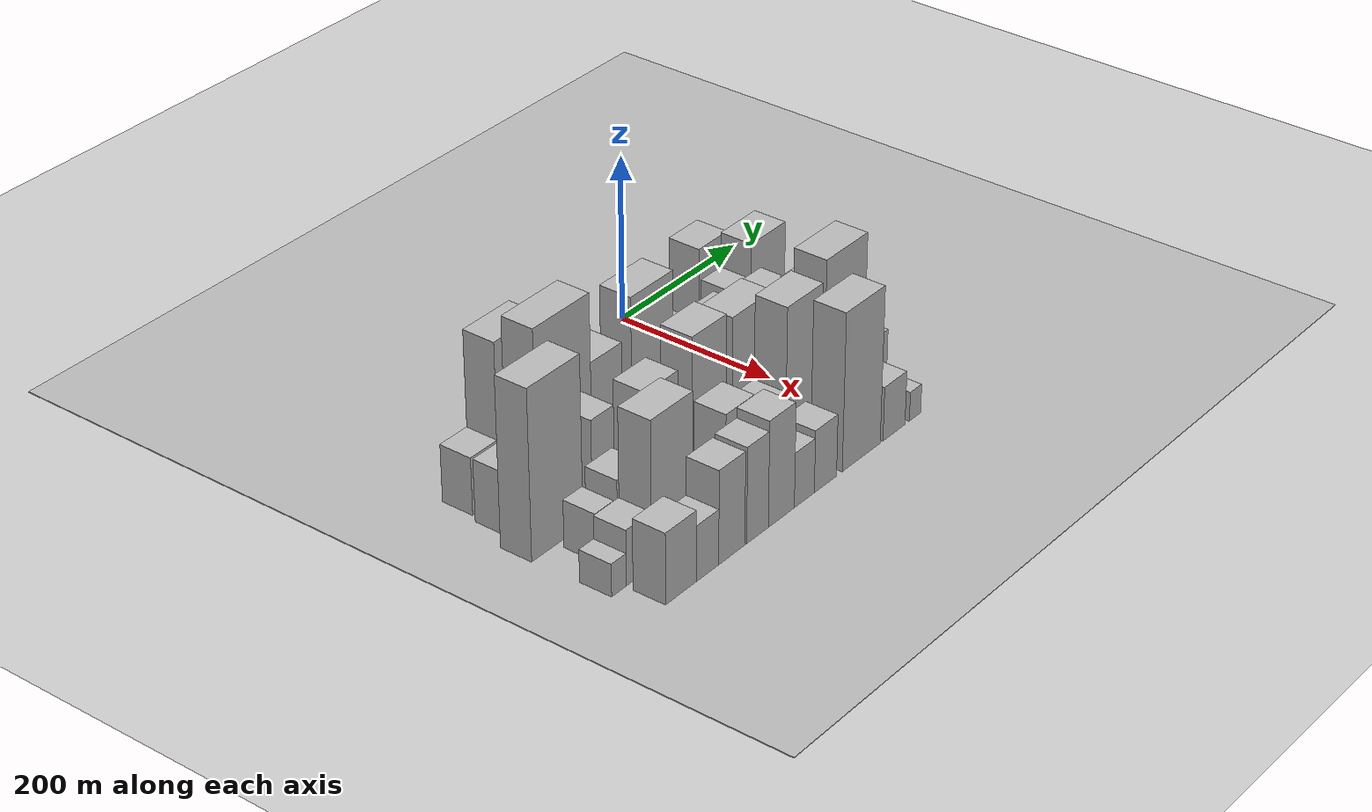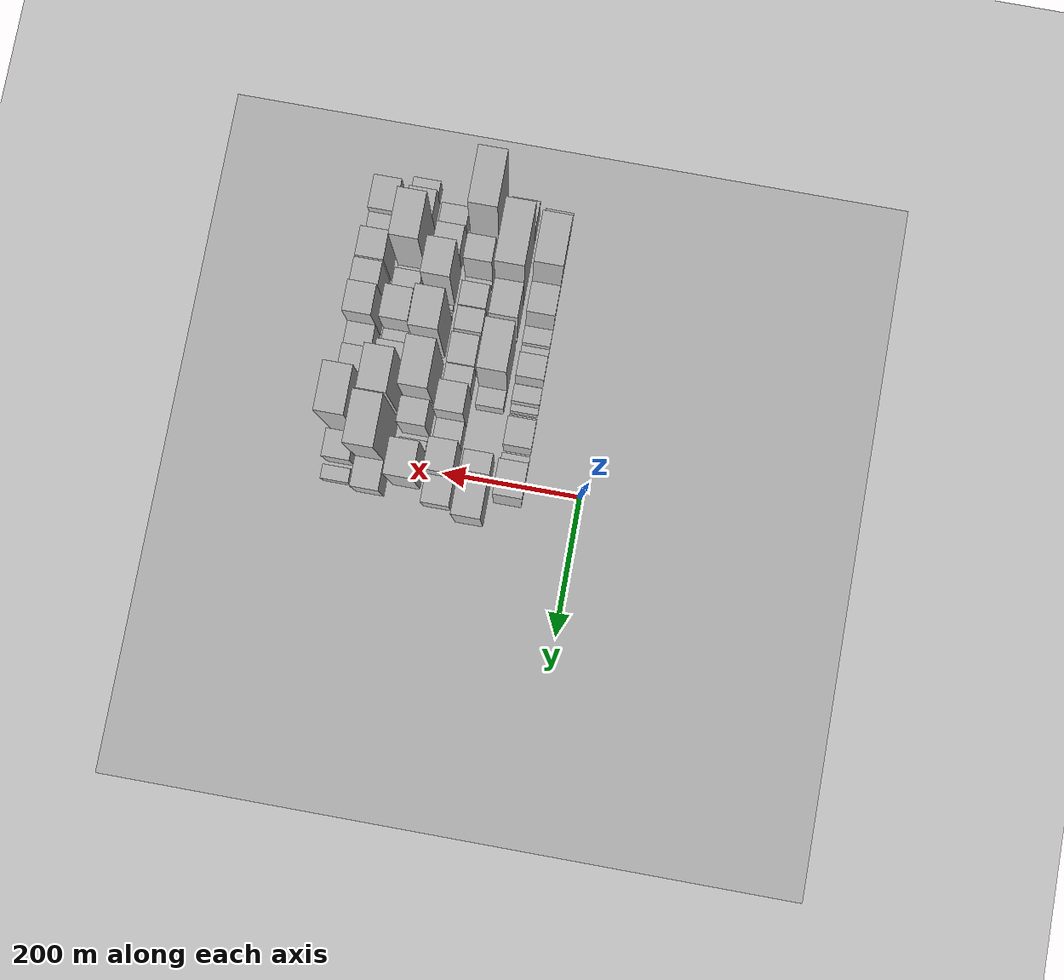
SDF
<sdf version="1.6">
 <world name="default">
  <include><name>ground_plane_1</name><uri>model://HANNAS_ground_plane</uri></include>
  <include>
   <name>ground_plane_2</name>
   <uri>model://HANNAS_ground_plane</uri>
   <pose>100 0 0  0 0 0</pose>
  </include>
  <model name="building_11">
   <static>1</static>
   <pose>100.0000 -367.1721 0 0.000000 0.000000 0.000000</pose>
   <link name="link">
    <pose>0 0 34.50 0 0 0</pose>
    <collision name="collision"><geometry><box><size>40.0000 40.4791 69.0000</size></box></geometry></collision>
    <visual name="visual">
     <cast_shadows>0</cast_shadows>
     <geometry><box><size>40.0000 40.4791 69.0000</size></box></geometry>
     <material>
      <script>
       <uri>model://HANNAS_wall/materials/scripts</uri>
       <uri>model://HANNAS_wall/materials/textures</uri>
       <name>vrc/HANNAS_wall</name>
      </script>
     </material>
    </visual>
   </link>
  </model>
  <model name="building_12">
   <static>1</static>
   <pose>100.0000 -311.9946 0 0.000000 0.000000 0.000000</pose>
   <link name="link">
    <pose>0 0 91.50 0 0 0</pose>
    <collision name="collision"><geometry><box><size>40.0000 69.8759 183.0000</size></box></geometry></collision>
    <visual name="visual">
     <cast_shadows>0</cast_shadows>
     <geometry><box><size>40.0000 69.8759 183.0000</size></box></geometry>
     <material>
      <script>
       <uri>model://HANNAS_wall/materials/scripts</uri>
       <uri>model://HANNAS_wall/materials/textures</uri>
       <name>vrc/HANNAS_wall</name>
      </script>
     </material>
    </visual>
   </link>
  </model>
  <model name="building_13">
   <static>1</static>
   <pose>100.0000 -249.6901 0 0.000000 0.000000 0.000000</pose>
   <link name="link">
    <pose>0 0 54.00 0 0 0</pose>
    <collision name="collision"><geometry><box><size>40.0000 42.7331 108.0000</size></box></geometry></collision>
    <visual name="visual">
     <cast_shadows>0</cast_shadows>
     <geometry><box><size>40.0000 42.7331 108.0000</size></box></geometry>
     <material>
      <script>
       <uri>model://HANNAS_wall/materials/scripts</uri>
       <uri>model://HANNAS_wall/materials/textures</uri>
       <name>vrc/HANNAS_wall</name>
      </script>
     </material>
    </visual>
   </link>
  </model>
  <model name="building_14">
   <static>1</static>
   <pose>100.0000 -210.0288 0 0.000000 0.000000 0.000000</pose>
   <link name="link">
    <pose>0 0 24.00 0 0 0</pose>
    <collision name="collision"><geometry><box><size>40.0000 24.5895 48.0000</size></box></geometry></collision>
    <visual name="visual">
     <cast_shadows>0</cast_shadows>
     <geometry><box><size>40.0000 24.5895 48.0000</size></box></geometry>
     <material>
      <script>
       <uri>model://HANNAS_wall/materials/scripts</uri>
       <uri>model://HANNAS_wall/materials/textures</uri>
       <name>vrc/HANNAS_wall</name>
      </script>
     </material>
    </visual>
   </link>
  </model>
  <model name="building_15">
   <static>1</static>
   <pose>100.0000 -189.3858 0 0.000000 0.000000 0.000000</pose>
   <link name="link">
    <pose>0 0 15.00 0 0 0</pose>
    <collision name="collision"><geometry><box><size>40.0000 16.6964 30.0000</size></box></geometry></collision>
    <visual name="visual">
     <cast_shadows>0</cast_shadows>
     <geometry><box><size>40.0000 16.6964 30.0000</size></box></geometry>
     <material>
      <script>
       <uri>model://HANNAS_wall/materials/scripts</uri>
       <uri>model://HANNAS_wall/materials/textures</uri>
       <name>vrc/HANNAS_wall</name>
      </script>
     </material>
    </visual>
   </link>
  </model>
  <model name="building_16">
   <static>1</static>
   <pose>100.0000 -163.9849 0 0.000000 0.000000 0.000000</pose>
   <link name="link">
    <pose>0 0 31.50 0 0 0</pose>
    <collision name="collision"><geometry><box><size>40.0000 34.1054 63.0000</size></box></geometry></collision>
    <visual name="visual">
     <cast_shadows>0</cast_shadows>
     <geometry><box><size>40.0000 34.1054 63.0000</size></box></geometry>
     <material>
      <script>
       <uri>model://HANNAS_wall/materials/scripts</uri>
       <uri>model://HANNAS_wall/materials/textures</uri>
       <name>vrc/HANNAS_wall</name>
      </script>
     </material>
    </visual>
   </link>
  </model>
  <model name="building_17">
   <static>1</static>
   <pose>100.0000 -125.6724 0 0.000000 0.000000 0.000000</pose>
   <link name="link">
    <pose>0 0 24.00 0 0 0</pose>
    <collision name="collision"><geometry><box><size>40.0000 24.5197 48.0000</size></box></geometry></collision>
    <visual name="visual">
     <cast_shadows>0</cast_shadows>
     <geometry><box><size>40.0000 24.5197 48.0000</size></box></geometry>
     <material>
      <script>
       <uri>model://HANNAS_wall/materials/scripts</uri>
       <uri>model://HANNAS_wall/materials/textures</uri>
       <name>vrc/HANNAS_wall</name>
      </script>
     </material>
    </visual>
   </link>
  </model>
  <model name="building_18">
   <static>1</static>
   <pose>100.0000 -108.2960 0 0.000000 0.000000 0.000000</pose>
   <link name="link">
    <pose>0 0 10.50 0 0 0</pose>
    <collision name="collision"><geometry><box><size>40.0000 10.2332 21.0000</size></box></geometry></collision>
    <visual name="visual">
     <cast_shadows>0</cast_shadows>
     <geometry><box><size>40.0000 10.2332 21.0000</size></box></geometry>
     <material>
      <script>
       <uri>model://HANNAS_wall/materials/scripts</uri>
       <uri>model://HANNAS_wall/materials/textures</uri>
       <name>vrc/HANNAS_wall</name>
      </script>
     </material>
    </visual>
   </link>
  </model>
  <model name="building_19">
   <static>1</static>
   <pose>100.0000 -93.1652 0 0.000000 0.000000 0.000000</pose>
   <link name="link">
    <pose>0 0 10.50 0 0 0</pose>
    <collision name="collision"><geometry><box><size>40.0000 10.0284 21.0000</size></box></geometry></collision>
    <visual name="visual">
     <cast_shadows>0</cast_shadows>
     <geometry><box><size>40.0000 10.0284 21.0000</size></box></geometry>
     <material>
      <script>
       <uri>model://HANNAS_wall/materials/scripts</uri>
       <uri>model://HANNAS_wall/materials/textures</uri>
       <name>vrc/HANNAS_wall</name>
      </script>
     </material>
    </visual>
   </link>
  </model>
  <model name="building_20">
   <static>1</static>
   <pose>100.0000 -67.8375 0 0.000000 0.000000 0.000000</pose>
   <link name="link">
    <pose>0 0 36.00 0 0 0</pose>
    <collision name="collision"><geometry><box><size>40.0000 40.6270 72.0000</size></box></geometry></collision>
    <visual name="visual">
     <cast_shadows>0</cast_shadows>
     <geometry><box><size>40.0000 40.6270 72.0000</size></box></geometry>
     <material>
      <script>
       <uri>model://HANNAS_wall/materials/scripts</uri>
       <uri>model://HANNAS_wall/materials/textures</uri>
       <name>vrc/HANNAS_wall</name>
      </script>
     </material>
    </visual>
   </link>
  </model>
  <model name="building_21">
   <static>1</static>
   <pose>100.0000 -30.2144 0 0.000000 0.000000 0.000000</pose>
   <link name="link">
    <pose>0 0 19.50 0 0 0</pose>
    <collision name="collision"><geometry><box><size>40.0000 20.6191 39.0000</size></box></geometry></collision>
    <visual name="visual">
     <cast_shadows>0</cast_shadows>
     <geometry><box><size>40.0000 20.6191 39.0000</size></box></geometry>
     <material>
      <script>
       <uri>model://HANNAS_wall/materials/scripts</uri>
       <uri>model://HANNAS_wall/materials/textures</uri>
       <name>vrc/HANNAS_wall</name>
      </script>
     </material>
    </visual>
   </link>
  </model>
  <model name="building_22">
   <static>1</static>
   <pose>100.0000 4.3915 0 0.000000 0.000000 0.000000</pose>
   <link name="link">
    <pose>0 0 69.00 0 0 0</pose>
    <collision name="collision"><geometry><box><size>40.0000 48.5927 138.0000</size></box></geometry></collision>
    <visual name="visual">
     <cast_shadows>0</cast_shadows>
     <geometry><box><size>40.0000 48.5927 138.0000</size></box></geometry>
     <material>
      <script>
       <uri>model://HANNAS_wall/materials/scripts</uri>
       <uri>model://HANNAS_wall/materials/textures</uri>
       <name>vrc/HANNAS_wall</name>
      </script>
     </material>
    </visual>
   </link>
  </model>
  <model name="building_55">
   <static>1</static>
   <pose>149.0000 -373.6690 0 0.000000 0.000000 0.000000</pose>
   <link name="link">
    <pose>0 0 37.50 0 0 0</pose>
    <collision name="collision"><geometry><box><size>40.0000 40.7140 75.0000</size></box></geometry></collision>
    <visual name="visual">
     <cast_shadows>0</cast_shadows>
     <geometry><box><size>40.0000 40.7140 75.0000</size></box></geometry>
     <material>
      <script>
       <uri>model://HANNAS_wall/materials/scripts</uri>
       <uri>model://HANNAS_wall/materials/textures</uri>
       <name>vrc/HANNAS_wall</name>
      </script>
     </material>
    </visual>
   </link>
  </model>
  <model name="building_56">
   <static>1</static>
   <pose>149.0000 -302.2991 0 0.000000 0.000000 0.000000</pose>
   <link name="link">
    <pose>0 0 108.00 0 0 0</pose>
    <collision name="collision"><geometry><box><size>40.0000 86.0258 216.0000</size></box></geometry></collision>
    <visual name="visual">
     <cast_shadows>0</cast_shadows>
     <geometry><box><size>40.0000 86.0258 216.0000</size></box></geometry>
     <material>
      <script>
       <uri>model://HANNAS_wall/materials/scripts</uri>
       <uri>model://HANNAS_wall/materials/textures</uri>
       <name>vrc/HANNAS_wall</name>
      </script>
     </material>
    </visual>
   </link>
  </model>
  <model name="building_57">
   <static>1</static>
   <pose>149.0000 -234.6798 0 0.000000 0.000000 0.000000</pose>
   <link name="link">
    <pose>0 0 67.50 0 0 0</pose>
    <collision name="collision"><geometry><box><size>40.0000 49.2129 135.0000</size></box></geometry></collision>
    <visual name="visual">
     <cast_shadows>0</cast_shadows>
     <geometry><box><size>40.0000 49.2129 135.0000</size></box></geometry>
     <material>
      <script>
       <uri>model://HANNAS_wall/materials/scripts</uri>
       <uri>model://HANNAS_wall/materials/textures</uri>
       <name>vrc/HANNAS_wall</name>
      </script>
     </material>
    </visual>
   </link>
  </model>
  <model name="building_58">
   <static>1</static>
   <pose>149.0000 -206.4433 0 0.000000 0.000000 0.000000</pose>
   <link name="link">
    <pose>0 0 7.50 0 0 0</pose>
    <collision name="collision"><geometry><box><size>40.0000 7.2601 15.0000</size></box></geometry></collision>
    <visual name="visual">
     <cast_shadows>0</cast_shadows>
     <geometry><box><size>40.0000 7.2601 15.0000</size></box></geometry>
     <material>
      <script>
       <uri>model://HANNAS_wall/materials/scripts</uri>
       <uri>model://HANNAS_wall/materials/textures</uri>
       <name>vrc/HANNAS_wall</name>
      </script>
     </material>
    </visual>
   </link>
  </model>
  <model name="building_59">
   <static>1</static>
   <pose>149.0000 -160.5420 0 0.000000 0.000000 0.000000</pose>
   <link name="link">
    <pose>0 0 90.00 0 0 0</pose>
    <collision name="collision"><geometry><box><size>40.0000 68.5425 180.0000</size></box></geometry></collision>
    <visual name="visual">
     <cast_shadows>0</cast_shadows>
     <geometry><box><size>40.0000 68.5425 180.0000</size></box></geometry>
     <material>
      <script>
       <uri>model://HANNAS_wall/materials/scripts</uri>
       <uri>model://HANNAS_wall/materials/textures</uri>
       <name>vrc/HANNAS_wall</name>
      </script>
     </material>
    </visual>
   </link>
  </model>
  <model name="building_60">
   <static>1</static>
   <pose>149.0000 -112.8269 0 0.000000 0.000000 0.000000</pose>
   <link name="link">
    <pose>0 0 22.50 0 0 0</pose>
    <collision name="collision"><geometry><box><size>40.0000 26.8878 45.0000</size></box></geometry></collision>
    <visual name="visual">
     <cast_shadows>0</cast_shadows>
     <geometry><box><size>40.0000 26.8878 45.0000</size></box></geometry>
     <material>
      <script>
       <uri>model://HANNAS_wall/materials/scripts</uri>
       <uri>model://HANNAS_wall/materials/textures</uri>
       <name>vrc/HANNAS_wall</name>
      </script>
     </material>
    </visual>
   </link>
  </model>
  <model name="building_61">
   <static>1</static>
   <pose>149.0000 -10.8779 0 0.000000 0.000000 0.000000</pose>
   <link name="link">
    <pose>0 0 54.00 0 0 0</pose>
    <collision name="collision"><geometry><box><size>40.0000 33.6701 108.0000</size></box></geometry></collision>
    <visual name="visual">
     <cast_shadows>0</cast_shadows>
     <geometry><box><size>40.0000 33.6701 108.0000</size></box></geometry>
     <material>
      <script>
       <uri>model://HANNAS_wall/materials/scripts</uri>
       <uri>model://HANNAS_wall/materials/textures</uri>
       <name>vrc/HANNAS_wall</name>
      </script>
     </material>
    </visual>
   </link>
  </model>
  <model name="building_62">
   <static>1</static>
   <pose>149.0000 35.7177 0 0.000000 0.000000 0.000000</pose>
   <link name="link">
    <pose>0 0 75.00 0 0 0</pose>
    <collision name="collision"><geometry><box><size>40.0000 59.5212 150.0000</size></box></geometry></collision>
    <visual name="visual">
     <cast_shadows>0</cast_shadows>
     <geometry><box><size>40.0000 59.5212 150.0000</size></box></geometry>
     <material>
      <script>
       <uri>model://HANNAS_wall/materials/scripts</uri>
       <uri>model://HANNAS_wall/materials/textures</uri>
       <name>vrc/HANNAS_wall</name>
      </script>
     </material>
    </visual>
   </link>
  </model>
  <model name="building_92">
   <static>1</static>
   <pose>198.0000 -373.3822 0 0.000000 0.000000 0.000000</pose>
   <link name="link">
    <pose>0 0 100.50 0 0 0</pose>
    <collision name="collision"><geometry><box><size>40.0000 78.7951 201.0000</size></box></geometry></collision>
    <visual name="visual">
     <cast_shadows>0</cast_shadows>
     <geometry><box><size>40.0000 78.7951 201.0000</size></box></geometry>
     <material>
      <script>
       <uri>model://HANNAS_wall/materials/scripts</uri>
       <uri>model://HANNAS_wall/materials/textures</uri>
       <name>vrc/HANNAS_wall</name>
      </script>
     </material>
    </visual>
   </link>
  </model>
  <model name="building_93">
   <static>1</static>
   <pose>198.0000 -324.5776 0 0.000000 0.000000 0.000000</pose>
   <link name="link">
    <pose>0 0 13.50 0 0 0</pose>
    <collision name="collision"><geometry><box><size>40.0000 10.8140 27.0000</size></box></geometry></collision>
    <visual name="visual">
     <cast_shadows>0</cast_shadows>
     <geometry><box><size>40.0000 10.8140 27.0000</size></box></geometry>
     <material>
      <script>
       <uri>model://HANNAS_wall/materials/scripts</uri>
       <uri>model://HANNAS_wall/materials/textures</uri>
       <name>vrc/HANNAS_wall</name>
      </script>
     </material>
    </visual>
   </link>
  </model>
  <model name="building_94">
   <static>1</static>
   <pose>198.0000 -301.4640 0 0.000000 0.000000 0.000000</pose>
   <link name="link">
    <pose>0 0 58.50 0 0 0</pose>
    <collision name="collision"><geometry><box><size>40.0000 35.4132 117.0000</size></box></geometry></collision>
    <visual name="visual">
     <cast_shadows>0</cast_shadows>
     <geometry><box><size>40.0000 35.4132 117.0000</size></box></geometry>
     <material>
      <script>
       <uri>model://HANNAS_wall/materials/scripts</uri>
       <uri>model://HANNAS_wall/materials/textures</uri>
       <name>vrc/HANNAS_wall</name>
      </script>
     </material>
    </visual>
   </link>
  </model>
  <model name="building_95">
   <static>1</static>
   <pose>198.0000 -278.8083 0 0.000000 0.000000 0.000000</pose>
   <link name="link">
    <pose>0 0 10.50 0 0 0</pose>
    <collision name="collision"><geometry><box><size>40.0000 9.8983 21.0000</size></box></geometry></collision>
    <visual name="visual">
     <cast_shadows>0</cast_shadows>
     <geometry><box><size>40.0000 9.8983 21.0000</size></box></geometry>
     <material>
      <script>
       <uri>model://HANNAS_wall/materials/scripts</uri>
       <uri>model://HANNAS_wall/materials/textures</uri>
       <name>vrc/HANNAS_wall</name>
      </script>
     </material>
    </visual>
   </link>
  </model>
  <model name="building_96">
   <static>1</static>
   <pose>198.0000 -249.4217 0 0.000000 0.000000 0.000000</pose>
   <link name="link">
    <pose>0 0 31.50 0 0 0</pose>
    <collision name="collision"><geometry><box><size>40.0000 34.8749 63.0000</size></box></geometry></collision>
    <visual name="visual">
     <cast_shadows>0</cast_shadows>
     <geometry><box><size>40.0000 34.8749 63.0000</size></box></geometry>
     <material>
      <script>
       <uri>model://HANNAS_wall/materials/scripts</uri>
       <uri>model://HANNAS_wall/materials/textures</uri>
       <name>vrc/HANNAS_wall</name>
      </script>
     </material>
    </visual>
   </link>
  </model>
  <model name="building_97">
   <static>1</static>
   <pose>198.0000 -215.1450 0 0.000000 0.000000 0.000000</pose>
   <link name="link">
    <pose>0 0 28.50 0 0 0</pose>
    <collision name="collision"><geometry><box><size>40.0000 33.6785 57.0000</size></box></geometry></collision>
    <visual name="visual">
     <cast_shadows>0</cast_shadows>
     <geometry><box><size>40.0000 33.6785 57.0000</size></box></geometry>
     <material>
      <script>
       <uri>model://HANNAS_wall/materials/scripts</uri>
       <uri>model://HANNAS_wall/materials/textures</uri>
       <name>vrc/HANNAS_wall</name>
      </script>
     </material>
    </visual>
   </link>
  </model>
  <model name="building_98">
   <static>1</static>
   <pose>198.0000 -168.3652 0 0.000000 0.000000 0.000000</pose>
   <link name="link">
    <pose>0 0 37.50 0 0 0</pose>
    <collision name="collision"><geometry><box><size>40.0000 43.8811 75.0000</size></box></geometry></collision>
    <visual name="visual">
     <cast_shadows>0</cast_shadows>
     <geometry><box><size>40.0000 43.8811 75.0000</size></box></geometry>
     <material>
      <script>
       <uri>model://HANNAS_wall/materials/scripts</uri>
       <uri>model://HANNAS_wall/materials/textures</uri>
       <name>vrc/HANNAS_wall</name>
      </script>
     </material>
    </visual>
   </link>
  </model>
  <model name="building_99">
   <static>1</static>
   <pose>198.0000 -128.9223 0 0.000000 0.000000 0.000000</pose>
   <link name="link">
    <pose>0 0 34.50 0 0 0</pose>
    <collision name="collision"><geometry><box><size>40.0000 35.0048 69.0000</size></box></geometry></collision>
    <visual name="visual">
     <cast_shadows>0</cast_shadows>
     <geometry><box><size>40.0000 35.0048 69.0000</size></box></geometry>
     <material>
      <script>
       <uri>model://HANNAS_wall/materials/scripts</uri>
       <uri>model://HANNAS_wall/materials/textures</uri>
       <name>vrc/HANNAS_wall</name>
      </script>
     </material>
    </visual>
   </link>
  </model>
  <model name="building_100">
   <static>1</static>
   <pose>198.0000 -90.5883 0 0.000000 0.000000 0.000000</pose>
   <link name="link">
    <pose>0 0 66.00 0 0 0</pose>
    <collision name="collision"><geometry><box><size>40.0000 41.6631 132.0000</size></box></geometry></collision>
    <visual name="visual">
     <cast_shadows>0</cast_shadows>
     <geometry><box><size>40.0000 41.6631 132.0000</size></box></geometry>
     <material>
      <script>
       <uri>model://HANNAS_wall/materials/scripts</uri>
       <uri>model://HANNAS_wall/materials/textures</uri>
       <name>vrc/HANNAS_wall</name>
      </script>
     </material>
    </visual>
   </link>
  </model>
  <model name="building_101">
   <static>1</static>
   <pose>198.0000 -52.0225 0 0.000000 0.000000 0.000000</pose>
   <link name="link">
    <pose>0 0 30.00 0 0 0</pose>
    <collision name="collision"><geometry><box><size>40.0000 35.4684 60.0000</size></box></geometry></collision>
    <visual name="visual">
     <cast_shadows>0</cast_shadows>
     <geometry><box><size>40.0000 35.4684 60.0000</size></box></geometry>
     <material>
      <script>
       <uri>model://HANNAS_wall/materials/scripts</uri>
       <uri>model://HANNAS_wall/materials/textures</uri>
       <name>vrc/HANNAS_wall</name>
      </script>
     </material>
    </visual>
   </link>
  </model>
  <model name="building_102">
   <static>1</static>
   <pose>198.0000 -11.7291 0 0.000000 0.000000 0.000000</pose>
   <link name="link">
    <pose>0 0 61.50 0 0 0</pose>
    <collision name="collision"><geometry><box><size>40.0000 45.1184 123.0000</size></box></geometry></collision>
    <visual name="visual">
     <cast_shadows>0</cast_shadows>
     <geometry><box><size>40.0000 45.1184 123.0000</size></box></geometry>
     <material>
      <script>
       <uri>model://HANNAS_wall/materials/scripts</uri>
       <uri>model://HANNAS_wall/materials/textures</uri>
       <name>vrc/HANNAS_wall</name>
      </script>
     </material>
    </visual>
   </link>
  </model>
  <model name="building_103">
   <static>1</static>
   <pose>198.0000 30.8968 0 0.000000 0.000000 0.000000</pose>
   <link name="link">
    <pose>0 0 34.50 0 0 0</pose>
    <collision name="collision"><geometry><box><size>40.0000 40.1334 69.0000</size></box></geometry></collision>
    <visual name="visual">
     <cast_shadows>0</cast_shadows>
     <geometry><box><size>40.0000 40.1334 69.0000</size></box></geometry>
     <material>
      <script>
       <uri>model://HANNAS_wall/materials/scripts</uri>
       <uri>model://HANNAS_wall/materials/textures</uri>
       <name>vrc/HANNAS_wall</name>
      </script>
     </material>
    </visual>
   </link>
  </model>
  <model name="building_136">
   <static>1</static>
   <pose>247.0000 -359.7017 0 0.000000 0.000000 0.000000</pose>
   <link name="link">
    <pose>0 0 28.50 0 0 0</pose>
    <collision name="collision"><geometry><box><size>40.0000 29.2827 57.0000</size></box></geometry></collision>
    <visual name="visual">
     <cast_shadows>0</cast_shadows>
     <geometry><box><size>40.0000 29.2827 57.0000</size></box></geometry>
     <material>
      <script>
       <uri>model://HANNAS_wall/materials/scripts</uri>
       <uri>model://HANNAS_wall/materials/textures</uri>
       <name>vrc/HANNAS_wall</name>
      </script>
     </material>
    </visual>
   </link>
  </model>
  <model name="building_137">
   <static>1</static>
   <pose>247.0000 -318.9905 0 0.000000 0.000000 0.000000</pose>
   <link name="link">
    <pose>0 0 39.00 0 0 0</pose>
    <collision name="collision"><geometry><box><size>40.0000 42.1396 78.0000</size></box></geometry></collision>
    <visual name="visual">
     <cast_shadows>0</cast_shadows>
     <geometry><box><size>40.0000 42.1396 78.0000</size></box></geometry>
     <material>
      <script>
       <uri>model://HANNAS_wall/materials/scripts</uri>
       <uri>model://HANNAS_wall/materials/textures</uri>
       <name>vrc/HANNAS_wall</name>
      </script>
     </material>
    </visual>
   </link>
  </model>
  <model name="building_138">
   <static>1</static>
   <pose>247.0000 -269.2816 0 0.000000 0.000000 0.000000</pose>
   <link name="link">
    <pose>0 0 78.00 0 0 0</pose>
    <collision name="collision"><geometry><box><size>40.0000 51.2782 156.0000</size></box></geometry></collision>
    <visual name="visual">
     <cast_shadows>0</cast_shadows>
     <geometry><box><size>40.0000 51.2782 156.0000</size></box></geometry>
     <material>
      <script>
       <uri>model://HANNAS_wall/materials/scripts</uri>
       <uri>model://HANNAS_wall/materials/textures</uri>
       <name>vrc/HANNAS_wall</name>
      </script>
     </material>
    </visual>
   </link>
  </model>
  <model name="building_139">
   <static>1</static>
   <pose>247.0000 -235.7128 0 0.000000 0.000000 0.000000</pose>
   <link name="link">
    <pose>0 0 9.00 0 0 0</pose>
    <collision name="collision"><geometry><box><size>40.0000 7.8595 18.0000</size></box></geometry></collision>
    <visual name="visual">
     <cast_shadows>0</cast_shadows>
     <geometry><box><size>40.0000 7.8595 18.0000</size></box></geometry>
     <material>
      <script>
       <uri>model://HANNAS_wall/materials/scripts</uri>
       <uri>model://HANNAS_wall/materials/textures</uri>
       <name>vrc/HANNAS_wall</name>
      </script>
     </material>
    </visual>
   </link>
  </model>
  <model name="building_140">
   <static>1</static>
   <pose>247.0000 -224.2994 0 0.000000 0.000000 0.000000</pose>
   <link name="link">
    <pose>0 0 7.50 0 0 0</pose>
    <collision name="collision"><geometry><box><size>40.0000 6.9672 15.0000</size></box></geometry></collision>
    <visual name="visual">
     <cast_shadows>0</cast_shadows>
     <geometry><box><size>40.0000 6.9672 15.0000</size></box></geometry>
     <material>
      <script>
       <uri>model://HANNAS_wall/materials/scripts</uri>
       <uri>model://HANNAS_wall/materials/textures</uri>
       <name>vrc/HANNAS_wall</name>
      </script>
     </material>
    </visual>
   </link>
  </model>
  <model name="building_141">
   <static>1</static>
   <pose>247.0000 -193.0057 0 0.000000 0.000000 0.000000</pose>
   <link name="link">
    <pose>0 0 91.50 0 0 0</pose>
    <collision name="collision"><geometry><box><size>40.0000 55.6203 183.0000</size></box></geometry></collision>
    <visual name="visual">
     <cast_shadows>0</cast_shadows>
     <geometry><box><size>40.0000 55.6203 183.0000</size></box></geometry>
     <material>
      <script>
       <uri>model://HANNAS_wall/materials/scripts</uri>
       <uri>model://HANNAS_wall/materials/textures</uri>
       <name>vrc/HANNAS_wall</name>
      </script>
     </material>
    </visual>
   </link>
  </model>
  <model name="building_142">
   <static>1</static>
   <pose>247.0000 -121.6919 0 0.000000 0.000000 0.000000</pose>
   <link name="link">
    <pose>0 0 87.00 0 0 0</pose>
    <collision name="collision"><geometry><box><size>40.0000 67.0074 174.0000</size></box></geometry></collision>
    <visual name="visual">
     <cast_shadows>0</cast_shadows>
     <geometry><box><size>40.0000 67.0074 174.0000</size></box></geometry>
     <material>
      <script>
       <uri>model://HANNAS_wall/materials/scripts</uri>
       <uri>model://HANNAS_wall/materials/textures</uri>
       <name>vrc/HANNAS_wall</name>
      </script>
     </material>
    </visual>
   </link>
  </model>
  <model name="building_143">
   <static>1</static>
   <pose>247.0000 -65.9211 0 0.000000 0.000000 0.000000</pose>
   <link name="link">
    <pose>0 0 54.00 0 0 0</pose>
    <collision name="collision"><geometry><box><size>40.0000 36.5342 108.0000</size></box></geometry></collision>
    <visual name="visual">
     <cast_shadows>0</cast_shadows>
     <geometry><box><size>40.0000 36.5342 108.0000</size></box></geometry>
     <material>
      <script>
       <uri>model://HANNAS_wall/materials/scripts</uri>
       <uri>model://HANNAS_wall/materials/textures</uri>
       <name>vrc/HANNAS_wall</name>
      </script>
     </material>
    </visual>
   </link>
  </model>
  <model name="building_144">
   <static>1</static>
   <pose>247.0000 -29.8868 0 0.000000 0.000000 0.000000</pose>
   <link name="link">
    <pose>0 0 15.00 0 0 0</pose>
    <collision name="collision"><geometry><box><size>40.0000 15.5343 30.0000</size></box></geometry></collision>
    <visual name="visual">
     <cast_shadows>0</cast_shadows>
     <geometry><box><size>40.0000 15.5343 30.0000</size></box></geometry>
     <material>
      <script>
       <uri>model://HANNAS_wall/materials/scripts</uri>
       <uri>model://HANNAS_wall/materials/textures</uri>
       <name>vrc/HANNAS_wall</name>
      </script>
     </material>
    </visual>
   </link>
  </model>
  <model name="building_145">
   <static>1</static>
   <pose>247.0000 3.2828 0 0.000000 0.000000 0.000000</pose>
   <link name="link">
    <pose>0 0 72.00 0 0 0</pose>
    <collision name="collision"><geometry><box><size>40.0000 50.8050 144.0000</size></box></geometry></collision>
    <visual name="visual">
     <cast_shadows>0</cast_shadows>
     <geometry><box><size>40.0000 50.8050 144.0000</size></box></geometry>
     <material>
      <script>
       <uri>model://HANNAS_wall/materials/scripts</uri>
       <uri>model://HANNAS_wall/materials/textures</uri>
       <name>vrc/HANNAS_wall</name>
      </script>
     </material>
    </visual>
   </link>
  </model>
  <model name="building_177">
   <static>1</static>
   <pose>296.0000 -398.6934 0 0.000000 0.000000 0.000000</pose>
   <link name="link">
    <pose>0 0 19.50 0 0 0</pose>
    <collision name="collision"><geometry><box><size>40.0000 22.6269 39.0000</size></box></geometry></collision>
    <visual name="visual">
     <cast_shadows>0</cast_shadows>
     <geometry><box><size>40.0000 22.6269 39.0000</size></box></geometry>
     <material>
      <script>
       <uri>model://HANNAS_wall/materials/scripts</uri>
       <uri>model://HANNAS_wall/materials/textures</uri>
       <name>vrc/HANNAS_wall</name>
      </script>
     </material>
    </visual>
   </link>
  </model>
  <model name="building_178">
   <static>1</static>
   <pose>296.0000 -367.8002 0 0.000000 0.000000 0.000000</pose>
   <link name="link">
    <pose>0 0 33.00 0 0 0</pose>
    <collision name="collision"><geometry><box><size>40.0000 39.1594 66.0000</size></box></geometry></collision>
    <visual name="visual">
     <cast_shadows>0</cast_shadows>
     <geometry><box><size>40.0000 39.1594 66.0000</size></box></geometry>
     <material>
      <script>
       <uri>model://HANNAS_wall/materials/scripts</uri>
       <uri>model://HANNAS_wall/materials/textures</uri>
       <name>vrc/HANNAS_wall</name>
      </script>
     </material>
    </visual>
   </link>
  </model>
  <model name="building_179">
   <static>1</static>
   <pose>296.0000 -315.3725 0 0.000000 0.000000 0.000000</pose>
   <link name="link">
    <pose>0 0 85.50 0 0 0</pose>
    <collision name="collision"><geometry><box><size>40.0000 65.6959 171.0000</size></box></geometry></collision>
    <visual name="visual">
     <cast_shadows>0</cast_shadows>
     <geometry><box><size>40.0000 65.6959 171.0000</size></box></geometry>
     <material>
      <script>
       <uri>model://HANNAS_wall/materials/scripts</uri>
       <uri>model://HANNAS_wall/materials/textures</uri>
       <name>vrc/HANNAS_wall</name>
      </script>
     </material>
    </visual>
   </link>
  </model>
  <model name="building_180">
   <static>1</static>
   <pose>296.0000 -276.5574 0 0.000000 0.000000 0.000000</pose>
   <link name="link">
    <pose>0 0 12.00 0 0 0</pose>
    <collision name="collision"><geometry><box><size>40.0000 11.9344 24.0000</size></box></geometry></collision>
    <visual name="visual">
     <cast_shadows>0</cast_shadows>
     <geometry><box><size>40.0000 11.9344 24.0000</size></box></geometry>
     <material>
      <script>
       <uri>model://HANNAS_wall/materials/scripts</uri>
       <uri>model://HANNAS_wall/materials/textures</uri>
       <name>vrc/HANNAS_wall</name>
      </script>
     </material>
    </visual>
   </link>
  </model>
  <model name="building_181">
   <static>1</static>
   <pose>296.0000 -254.7728 0 0.000000 0.000000 0.000000</pose>
   <link name="link">
    <pose>0 0 27.00 0 0 0</pose>
    <collision name="collision"><geometry><box><size>40.0000 31.6346 54.0000</size></box></geometry></collision>
    <visual name="visual">
     <cast_shadows>0</cast_shadows>
     <geometry><box><size>40.0000 31.6346 54.0000</size></box></geometry>
     <material>
      <script>
       <uri>model://HANNAS_wall/materials/scripts</uri>
       <uri>model://HANNAS_wall/materials/textures</uri>
       <name>vrc/HANNAS_wall</name>
      </script>
     </material>
    </visual>
   </link>
  </model>
  <model name="building_182">
   <static>1</static>
   <pose>296.0000 -206.7319 0 0.000000 0.000000 0.000000</pose>
   <link name="link">
    <pose>0 0 58.50 0 0 0</pose>
    <collision name="collision"><geometry><box><size>40.0000 46.4473 117.0000</size></box></geometry></collision>
    <visual name="visual">
     <cast_shadows>0</cast_shadows>
     <geometry><box><size>40.0000 46.4473 117.0000</size></box></geometry>
     <material>
      <script>
       <uri>model://HANNAS_wall/materials/scripts</uri>
       <uri>model://HANNAS_wall/materials/textures</uri>
       <name>vrc/HANNAS_wall</name>
      </script>
     </material>
    </visual>
   </link>
  </model>
  <model name="building_183">
   <static>1</static>
   <pose>296.0000 -171.0991 0 0.000000 0.000000 0.000000</pose>
   <link name="link">
    <pose>0 0 24.00 0 0 0</pose>
    <collision name="collision"><geometry><box><size>40.0000 24.8182 48.0000</size></box></geometry></collision>
    <visual name="visual">
     <cast_shadows>0</cast_shadows>
     <geometry><box><size>40.0000 24.8182 48.0000</size></box></geometry>
     <material>
      <script>
       <uri>model://HANNAS_wall/materials/scripts</uri>
       <uri>model://HANNAS_wall/materials/textures</uri>
       <name>vrc/HANNAS_wall</name>
      </script>
     </material>
    </visual>
   </link>
  </model>
  <model name="building_184">
   <static>1</static>
   <pose>296.0000 -144.5602 0 0.000000 0.000000 0.000000</pose>
   <link name="link">
    <pose>0 0 46.50 0 0 0</pose>
    <collision name="collision"><geometry><box><size>40.0000 28.2596 93.0000</size></box></geometry></collision>
    <visual name="visual">
     <cast_shadows>0</cast_shadows>
     <geometry><box><size>40.0000 28.2596 93.0000</size></box></geometry>
     <material>
      <script>
       <uri>model://HANNAS_wall/materials/scripts</uri>
       <uri>model://HANNAS_wall/materials/textures</uri>
       <name>vrc/HANNAS_wall</name>
      </script>
     </material>
    </visual>
   </link>
  </model>
  <model name="building_185">
   <static>1</static>
   <pose>296.0000 -100.3264 0 0.000000 0.000000 0.000000</pose>
   <link name="link">
    <pose>0 0 96.00 0 0 0</pose>
    <collision name="collision"><geometry><box><size>40.0000 60.2081 192.0000</size></box></geometry></collision>
    <visual name="visual">
     <cast_shadows>0</cast_shadows>
     <geometry><box><size>40.0000 60.2081 192.0000</size></box></geometry>
     <material>
      <script>
       <uri>model://HANNAS_wall/materials/scripts</uri>
       <uri>model://HANNAS_wall/materials/textures</uri>
       <name>vrc/HANNAS_wall</name>
      </script>
     </material>
    </visual>
   </link>
  </model>
  <model name="building_186">
   <static>1</static>
   <pose>296.0000 -30.0171 0 0.000000 0.000000 0.000000</pose>
   <link name="link">
    <pose>0 0 108.00 0 0 0</pose>
    <collision name="collision"><geometry><box><size>40.0000 70.4104 216.0000</size></box></geometry></collision>
    <visual name="visual">
     <cast_shadows>0</cast_shadows>
     <geometry><box><size>40.0000 70.4104 216.0000</size></box></geometry>
     <material>
      <script>
       <uri>model://HANNAS_wall/materials/scripts</uri>
       <uri>model://HANNAS_wall/materials/textures</uri>
       <name>vrc/HANNAS_wall</name>
      </script>
     </material>
    </visual>
   </link>
  </model>
  <model name="building_187">
   <static>1</static>
   <pose>296.0000 26.3665 0 0.000000 0.000000 0.000000</pose>
   <link name="link">
    <pose>0 0 40.50 0 0 0</pose>
    <collision name="collision"><geometry><box><size>40.0000 42.3570 81.0000</size></box></geometry></collision>
    <visual name="visual">
     <cast_shadows>0</cast_shadows>
     <geometry><box><size>40.0000 42.3570 81.0000</size></box></geometry>
     <material>
      <script>
       <uri>model://HANNAS_wall/materials/scripts</uri>
       <uri>model://HANNAS_wall/materials/textures</uri>
       <name>vrc/HANNAS_wall</name>
      </script>
     </material>
    </visual>
   </link>
  </model>
  <model name="building_222">
   <static>1</static>
   <pose>345.0000 -364.2838 0 0.000000 0.000000 0.000000</pose>
   <link name="link">
    <pose>0 0 42.00 0 0 0</pose>
    <collision name="collision"><geometry><box><size>40.0000 48.2877 84.0000</size></box></geometry></collision>
    <visual name="visual">
     <cast_shadows>0</cast_shadows>
     <geometry><box><size>40.0000 48.2877 84.0000</size></box></geometry>
     <material>
      <script>
       <uri>model://HANNAS_wall/materials/scripts</uri>
       <uri>model://HANNAS_wall/materials/textures</uri>
       <name>vrc/HANNAS_wall</name>
      </script>
     </material>
    </visual>
   </link>
  </model>
  <model name="building_223">
   <static>1</static>
   <pose>345.0000 -322.5304 0 0.000000 0.000000 0.000000</pose>
   <link name="link">
    <pose>0 0 33.00 0 0 0</pose>
    <collision name="collision"><geometry><box><size>40.0000 35.2191 66.0000</size></box></geometry></collision>
    <visual name="visual">
     <cast_shadows>0</cast_shadows>
     <geometry><box><size>40.0000 35.2191 66.0000</size></box></geometry>
     <material>
      <script>
       <uri>model://HANNAS_wall/materials/scripts</uri>
       <uri>model://HANNAS_wall/materials/textures</uri>
       <name>vrc/HANNAS_wall</name>
      </script>
     </material>
    </visual>
   </link>
  </model>
  <model name="building_224">
   <static>1</static>
   <pose>345.0000 -283.8953 0 0.000000 0.000000 0.000000</pose>
   <link name="link">
    <pose>0 0 55.50 0 0 0</pose>
    <collision name="collision"><geometry><box><size>40.0000 42.0510 111.0000</size></box></geometry></collision>
    <visual name="visual">
     <cast_shadows>0</cast_shadows>
     <geometry><box><size>40.0000 42.0510 111.0000</size></box></geometry>
     <material>
      <script>
       <uri>model://HANNAS_wall/materials/scripts</uri>
       <uri>model://HANNAS_wall/materials/textures</uri>
       <name>vrc/HANNAS_wall</name>
      </script>
     </material>
    </visual>
   </link>
  </model>
  <model name="building_225">
   <static>1</static>
   <pose>345.0000 -242.1250 0 0.000000 0.000000 0.000000</pose>
   <link name="link">
    <pose>0 0 57.00 0 0 0</pose>
    <collision name="collision"><geometry><box><size>40.0000 35.4895 114.0000</size></box></geometry></collision>
    <visual name="visual">
     <cast_shadows>0</cast_shadows>
     <geometry><box><size>40.0000 35.4895 114.0000</size></box></geometry>
     <material>
      <script>
       <uri>model://HANNAS_wall/materials/scripts</uri>
       <uri>model://HANNAS_wall/materials/textures</uri>
       <name>vrc/HANNAS_wall</name>
      </script>
     </material>
    </visual>
   </link>
  </model>
  <model name="building_226">
   <static>1</static>
   <pose>345.0000 -202.6956 0 0.000000 0.000000 0.000000</pose>
   <link name="link">
    <pose>0 0 63.00 0 0 0</pose>
    <collision name="collision"><geometry><box><size>40.0000 43.3694 126.0000</size></box></geometry></collision>
    <visual name="visual">
     <cast_shadows>0</cast_shadows>
     <geometry><box><size>40.0000 43.3694 126.0000</size></box></geometry>
     <material>
      <script>
       <uri>model://HANNAS_wall/materials/scripts</uri>
       <uri>model://HANNAS_wall/materials/textures</uri>
       <name>vrc/HANNAS_wall</name>
      </script>
     </material>
    </visual>
   </link>
  </model>
  <model name="building_227">
   <static>1</static>
   <pose>345.0000 -164.1197 0 0.000000 0.000000 0.000000</pose>
   <link name="link">
    <pose>0 0 33.00 0 0 0</pose>
    <collision name="collision"><geometry><box><size>40.0000 33.7824 66.0000</size></box></geometry></collision>
    <visual name="visual">
     <cast_shadows>0</cast_shadows>
     <geometry><box><size>40.0000 33.7824 66.0000</size></box></geometry>
     <material>
      <script>
       <uri>model://HANNAS_wall/materials/scripts</uri>
       <uri>model://HANNAS_wall/materials/textures</uri>
       <name>vrc/HANNAS_wall</name>
      </script>
     </material>
    </visual>
   </link>
  </model>
  <model name="building_228">
   <static>1</static>
   <pose>345.0000 -128.1667 0 0.000000 0.000000 0.000000</pose>
   <link name="link">
    <pose>0 0 37.50 0 0 0</pose>
    <collision name="collision"><geometry><box><size>40.0000 38.1235 75.0000</size></box></geometry></collision>
    <visual name="visual">
     <cast_shadows>0</cast_shadows>
     <geometry><box><size>40.0000 38.1235 75.0000</size></box></geometry>
     <material>
      <script>
       <uri>model://HANNAS_wall/materials/scripts</uri>
       <uri>model://HANNAS_wall/materials/textures</uri>
       <name>vrc/HANNAS_wall</name>
      </script>
     </material>
    </visual>
   </link>
  </model>
  <model name="building_229">
   <static>1</static>
   <pose>345.0000 -65.7658 0 0.000000 0.000000 0.000000</pose>
   <link name="link">
    <pose>0 0 94.50 0 0 0</pose>
    <collision name="collision"><geometry><box><size>40.0000 66.6783 189.0000</size></box></geometry></collision>
    <visual name="visual">
     <cast_shadows>0</cast_shadows>
     <geometry><box><size>40.0000 66.6783 189.0000</size></box></geometry>
     <material>
      <script>
       <uri>model://HANNAS_wall/materials/scripts</uri>
       <uri>model://HANNAS_wall/materials/textures</uri>
       <name>vrc/HANNAS_wall</name>
      </script>
     </material>
    </visual>
   </link>
  </model>
  <model name="building_230">
   <static>1</static>
   <pose>345.0000 -7.6492 0 0.000000 0.000000 0.000000</pose>
   <link name="link">
    <pose>0 0 33.00 0 0 0</pose>
    <collision name="collision"><geometry><box><size>40.0000 39.5550 66.0000</size></box></geometry></collision>
    <visual name="visual">
     <cast_shadows>0</cast_shadows>
     <geometry><box><size>40.0000 39.5550 66.0000</size></box></geometry>
     <material>
      <script>
       <uri>model://HANNAS_wall/materials/scripts</uri>
       <uri>model://HANNAS_wall/materials/textures</uri>
       <name>vrc/HANNAS_wall</name>
      </script>
     </material>
    </visual>
   </link>
  </model>
  <model name="building_231">
   <static>1</static>
   <pose>345.0000 30.3738 0 0.000000 0.000000 0.000000</pose>
   <link name="link">
    <pose>0 0 18.00 0 0 0</pose>
    <collision name="collision"><geometry><box><size>40.0000 20.4908 36.0000</size></box></geometry></collision>
    <visual name="visual">
     <cast_shadows>0</cast_shadows>
     <geometry><box><size>40.0000 20.4908 36.0000</size></box></geometry>
     <material>
      <script>
       <uri>model://HANNAS_wall/materials/scripts</uri>
       <uri>model://HANNAS_wall/materials/textures</uri>
       <name>vrc/HANNAS_wall</name>
      </script>
     </material>
    </visual>
   </link>
  </model>
 </world>
</sdf>
